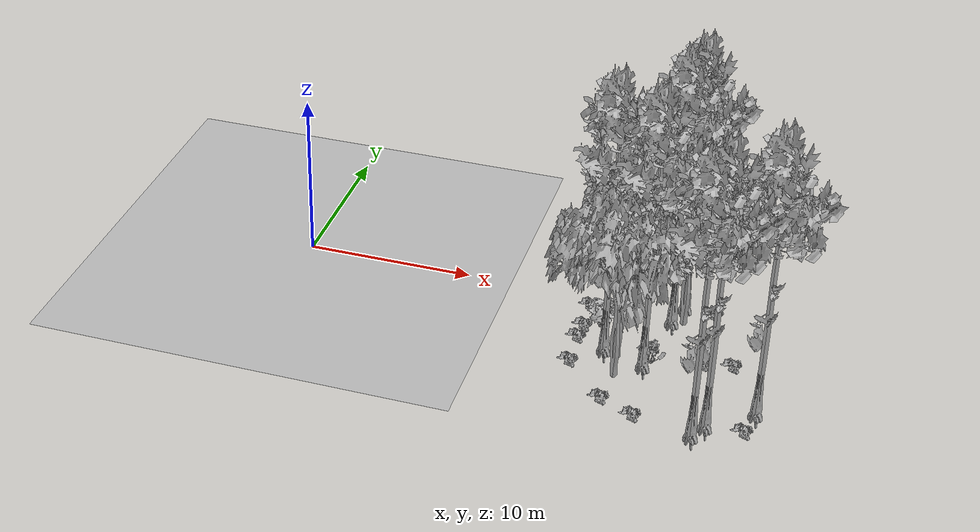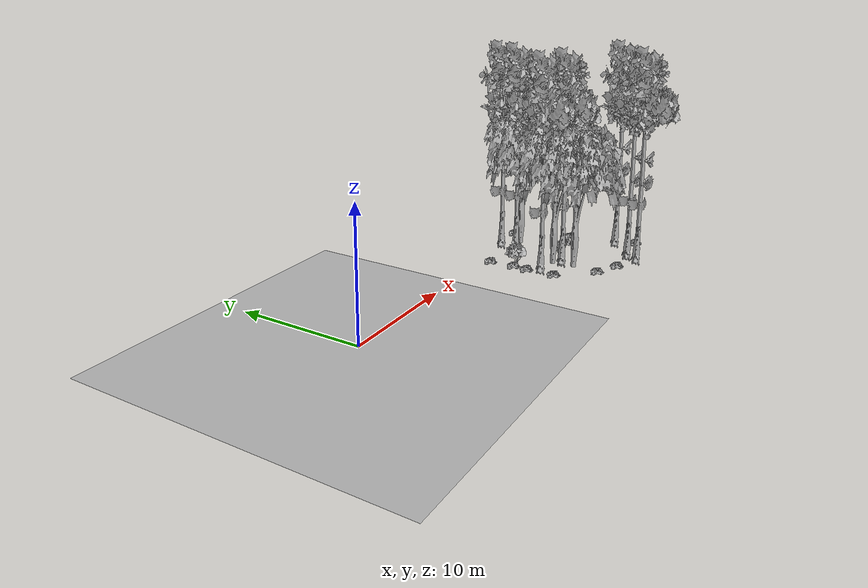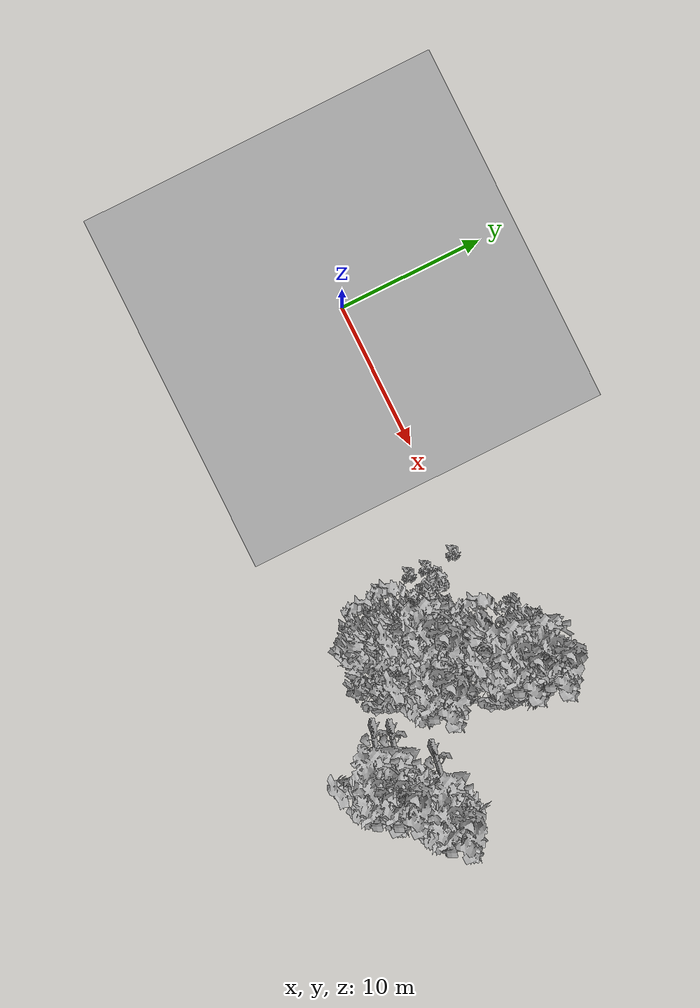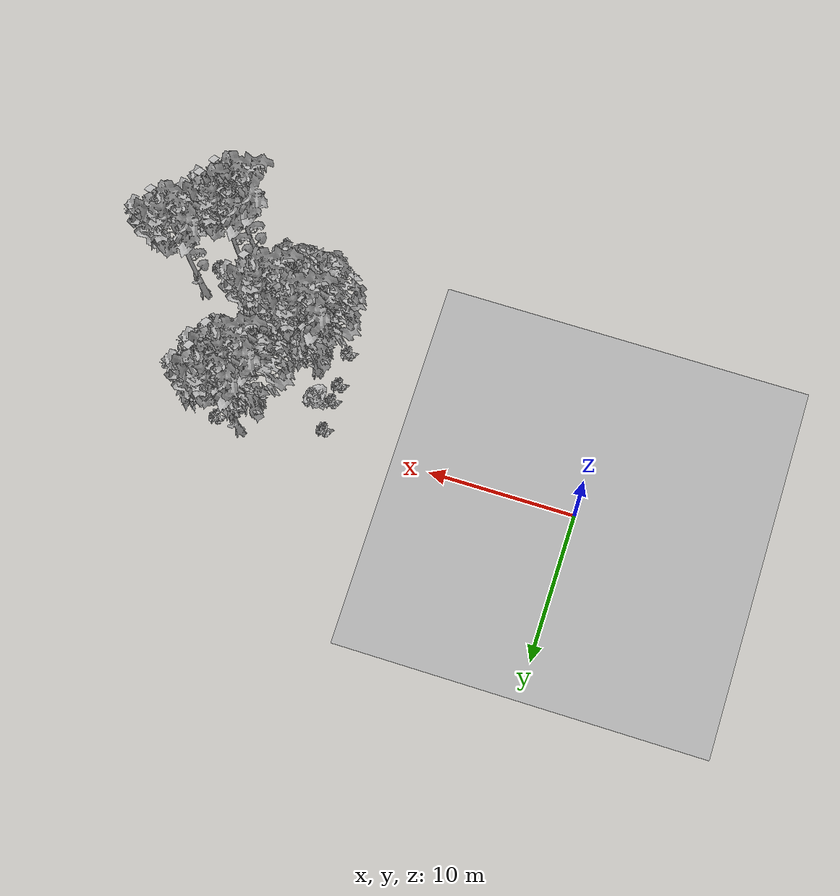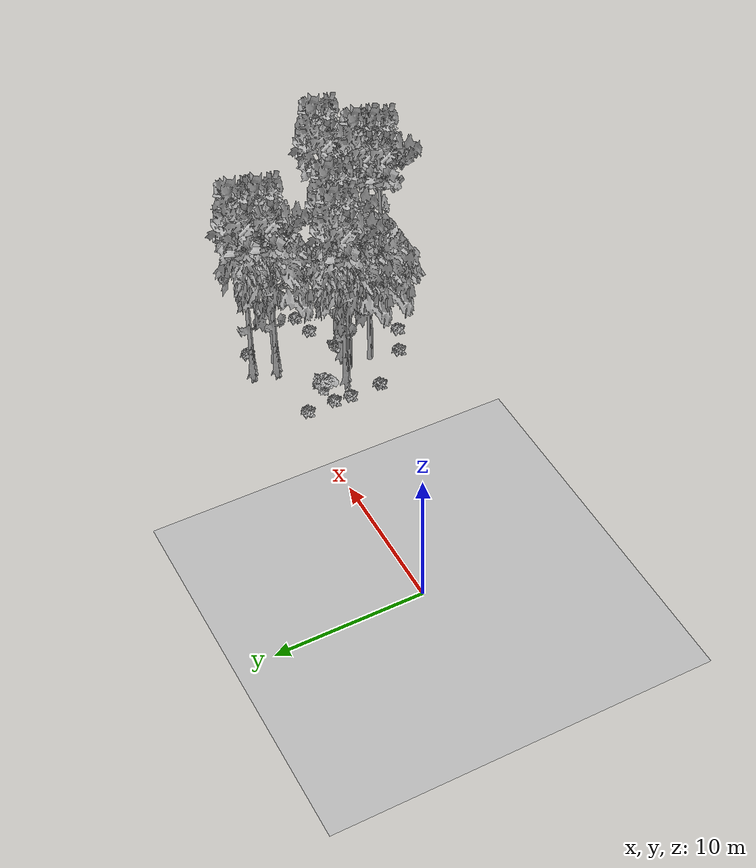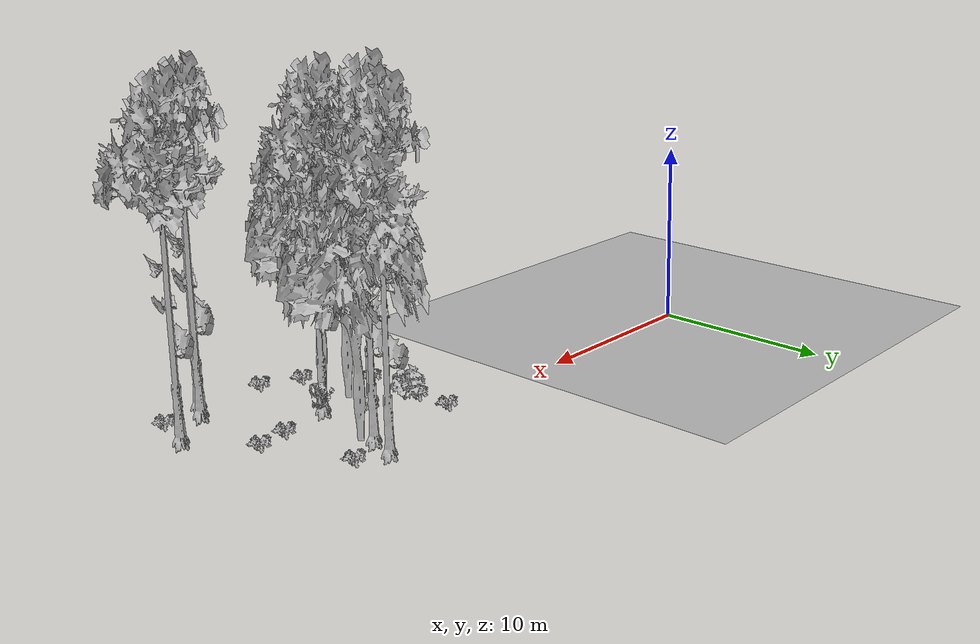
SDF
<sdf version="1.7">
 <world name="default">
  <model name="ground_plane">
   <static>1</static>
   <link name="link">
    <collision name="collision">
     <pose>-50 0 0 0 -0 0</pose>
     <geometry><plane><normal>0 0 1</normal><size>80 80</size></plane></geometry>
     <surface><contact><ode><min_depth>0.01</min_depth><max_vel>0</max_vel></ode></contact></surface>
    </collision>
    <visual name="grass">
     <cast_shadows>0</cast_shadows>
     <geometry>
      <mesh>
       <scale>0.46714285714285714 0.46714285714285714 0.1</scale>
       <uri>file://grass_plane/meshes/grass_plane.dae</uri>
      </mesh>
     </geometry>
    </visual>
   </link>
  </model>
  <model name="Tree 37">
   <static>1</static>
   <pose>25.901210232244182 -9.377925760192767 0 1.57079 -0 0</pose>
   <link name="link">
    <collision name="collision">
     <geometry><mesh><scale>3.5 5 3.5</scale><uri>model://tree_9/meshes/tree_9.obj</uri></mesh></geometry>
    </collision>
    <visual name="visual">
     <geometry><mesh><scale>3.5 5 3.5</scale><uri>model://tree_9/meshes/tree_9.obj</uri></mesh></geometry>
    </visual>
   </link>
  </model>
  <model name="Tree 75">
   <static>1</static>
   <pose>22.989416602415417 -0.7751276406888437 0 1.57079 -0 0</pose>
   <link name="link">
    <collision name="collision">
     <geometry><mesh><scale>3.5 5 3.5</scale><uri>model://tree_2/meshes/tree_2.obj</uri></mesh></geometry>
    </collision>
    <visual name="visual">
     <geometry><mesh><scale>3.5 5 3.5</scale><uri>model://tree_2/meshes/tree_2.obj</uri></mesh></geometry>
    </visual>
   </link>
  </model>
  <model name="Tree 116">
   <static>1</static>
   <pose>25.334481299563848 -10.377419522391513 0 1.57079 -0 0</pose>
   <link name="link">
    <collision name="collision">
     <geometry><mesh><scale>3.5 5 3.5</scale><uri>model://tree_9/meshes/tree_9.obj</uri></mesh></geometry>
    </collision>
    <visual name="visual">
     <geometry><mesh><scale>3.5 5 3.5</scale><uri>model://tree_9/meshes/tree_9.obj</uri></mesh></geometry>
    </visual>
   </link>
  </model>
  <model name="Tree 119">
   <static>1</static>
   <pose>20.238591992587423 -6.802817780426665 0 1.57079 -0 0</pose>
   <link name="link">
    <collision name="collision">
     <geometry><mesh><scale>3.5 5 3.5</scale><uri>model://tree_2/meshes/tree_2.obj</uri></mesh></geometry>
    </collision>
    <visual name="visual">
     <geometry><mesh><scale>3.5 5 3.5</scale><uri>model://tree_2/meshes/tree_2.obj</uri></mesh></geometry>
    </visual>
   </link>
  </model>
  <model name="Tree 251">
   <static>1</static>
   <pose>21.654480714058266 -5.212338930933107 0 1.57079 -0 0</pose>
   <link name="link">
    <collision name="collision">
     <geometry><mesh><scale>3.5 5 3.5</scale><uri>model://tree_9/meshes/tree_9.obj</uri></mesh></geometry>
    </collision>
    <visual name="visual">
     <geometry><mesh><scale>3.5 5 3.5</scale><uri>model://tree_9/meshes/tree_9.obj</uri></mesh></geometry>
    </visual>
   </link>
  </model>
  <model name="Tree 300">
   <static>1</static>
   <pose>19.239875803358764 -4.394657399350521 0 1.57079 -0 0</pose>
   <link name="link">
    <collision name="collision">
     <geometry><mesh><scale>3.5 5 3.5</scale><uri>model://tree_9/meshes/tree_9.obj</uri></mesh></geometry>
    </collision>
    <visual name="visual">
     <geometry><mesh><scale>3.5 5 3.5</scale><uri>model://tree_9/meshes/tree_9.obj</uri></mesh></geometry>
    </visual>
   </link>
  </model>
  <model name="Tree 385">
   <static>1</static>
   <pose>28.313302062492383 -7.495109575468959 0 1.57079 -0 0</pose>
   <link name="link">
    <collision name="collision">
     <geometry><mesh><scale>3.5 5 3.5</scale><uri>model://tree_9/meshes/tree_9.obj</uri></mesh></geometry>
    </collision>
    <visual name="visual">
     <geometry><mesh><scale>3.5 5 3.5</scale><uri>model://tree_9/meshes/tree_9.obj</uri></mesh></geometry>
    </visual>
   </link>
  </model>
  <model name="Tree 390">
   <static>1</static>
   <pose>22.39698997679826 -0.629621482124783 0 1.57079 -0 0</pose>
   <link name="link">
    <collision name="collision">
     <geometry><mesh><scale>3.5 5 3.5</scale><uri>model://tree_9/meshes/tree_9.obj</uri></mesh></geometry>
    </collision>
    <visual name="visual">
     <geometry><mesh><scale>3.5 5 3.5</scale><uri>model://tree_9/meshes/tree_9.obj</uri></mesh></geometry>
    </visual>
   </link>
  </model>
  <model name="Tree 414">
   <static>1</static>
   <pose>20.037782783827765 -5.08372729762786 0 1.57079 -0 0</pose>
   <link name="link">
    <collision name="collision">
     <geometry><mesh><scale>3.5 5 3.5</scale><uri>model://tree_2/meshes/tree_2.obj</uri></mesh></geometry>
    </collision>
    <visual name="visual">
     <geometry><mesh><scale>3.5 5 3.5</scale><uri>model://tree_2/meshes/tree_2.obj</uri></mesh></geometry>
    </visual>
   </link>
  </model>
  <model name="Tree 549">
   <static>1</static>
   <pose>22.865656358451467 0.9734392171967841 0 1.57079 -0 0</pose>
   <link name="link">
    <collision name="collision">
     <geometry><mesh><scale>3.5 5 3.5</scale><uri>model://tree_9/meshes/tree_9.obj</uri></mesh></geometry>
    </collision>
    <visual name="visual">
     <geometry><mesh><scale>3.5 5 3.5</scale><uri>model://tree_9/meshes/tree_9.obj</uri></mesh></geometry>
    </visual>
   </link>
  </model>
  <model name="Bush 14">
   <static>1</static>
   <pose>17.606480130921696 -2.7292538767327983 0 1.57079 -0 0</pose>
   <link name="link">
    <collision name="collision">
     <geometry><mesh><scale>2 2 2</scale><uri>model://bush_2/meshes/bush_2.obj</uri></mesh></geometry>
     <surface><contact><collide_without_contact>false</collide_without_contact></contact></surface>
    </collision>
    <visual name="visual">
     <geometry><mesh><scale>2 2 2</scale><uri>model://bush_2/meshes/bush_2.obj</uri></mesh></geometry>
    </visual>
   </link>
  </model>
  <model name="Bush 191">
   <static>1</static>
   <pose>17.519544099739313 -3.9187798999764922 0 1.57079 -0 0</pose>
   <link name="link">
    <collision name="collision">
     <geometry><mesh><scale>2 2 2</scale><uri>model://bush_2/meshes/bush_2.obj</uri></mesh></geometry>
     <surface><contact><collide_without_contact>false</collide_without_contact></contact></surface>
    </collision>
    <visual name="visual">
     <geometry><mesh><scale>2 2 2</scale><uri>model://bush_2/meshes/bush_2.obj</uri></mesh></geometry>
    </visual>
   </link>
  </model>
  <model name="Bush 235">
   <static>1</static>
   <pose>17.611693215000642 -6.215649362110476 0 1.57079 -0 0</pose>
   <link name="link">
    <collision name="collision">
     <geometry><mesh><scale>2 2 2</scale><uri>model://bush_2/meshes/bush_2.obj</uri></mesh></geometry>
     <surface><contact><collide_without_contact>false</collide_without_contact></contact></surface>
    </collision>
    <visual name="visual">
     <geometry><mesh><scale>2 2 2</scale><uri>model://bush_2/meshes/bush_2.obj</uri></mesh></geometry>
    </visual>
   </link>
  </model>
  <model name="Bush 340">
   <static>1</static>
   <pose>26.412479536132935 -3.983743361347429 0 1.57079 -0 0</pose>
   <link name="link">
    <collision name="collision">
     <geometry><mesh><scale>2 2 2</scale><uri>model://bush_2/meshes/bush_2.obj</uri></mesh></geometry>
     <surface><contact><collide_without_contact>false</collide_without_contact></contact></surface>
    </collision>
    <visual name="visual">
     <geometry><mesh><scale>2 2 2</scale><uri>model://bush_2/meshes/bush_2.obj</uri></mesh></geometry>
    </visual>
   </link>
  </model>
  <model name="Bush 353">
   <static>1</static>
   <pose>24.607930102009057 0.5439117355313172 0 1.57079 -0 0</pose>
   <link name="link">
    <collision name="collision">
     <geometry><mesh><scale>2 2 2</scale><uri>model://bush_2/meshes/bush_2.obj</uri></mesh></geometry>
     <surface><contact><collide_without_contact>false</collide_without_contact></contact></surface>
    </collision>
    <visual name="visual">
     <geometry><mesh><scale>2 2 2</scale><uri>model://bush_2/meshes/bush_2.obj</uri></mesh></geometry>
    </visual>
   </link>
  </model>
  <model name="Bush 365">
   <static>1</static>
   <pose>24.746012298031957 -4.2794431293424395 0 1.57079 -0 0</pose>
   <link name="link">
    <collision name="collision">
     <geometry><mesh><scale>2 2 2</scale><uri>model://bush_2/meshes/bush_2.obj</uri></mesh></geometry>
     <surface><contact><collide_without_contact>false</collide_without_contact></contact></surface>
    </collision>
    <visual name="visual">
     <geometry><mesh><scale>2 2 2</scale><uri>model://bush_2/meshes/bush_2.obj</uri></mesh></geometry>
    </visual>
   </link>
  </model>
  <model name="Bush 369">
   <static>1</static>
   <pose>27.899435304334773 -9.440817755556566 0 1.57079 -0 0</pose>
   <link name="link">
    <collision name="collision">
     <geometry><mesh><scale>2 2 2</scale><uri>model://bush_2/meshes/bush_2.obj</uri></mesh></geometry>
     <surface><contact><collide_without_contact>false</collide_without_contact></contact></surface>
    </collision>
    <visual name="visual">
     <geometry><mesh><scale>2 2 2</scale><uri>model://bush_2/meshes/bush_2.obj</uri></mesh></geometry>
    </visual>
   </link>
  </model>
  <model name="Bush 378">
   <static>1</static>
   <pose>18.589875122373165 -2.5880794025162714 0 1.57079 -0 0</pose>
   <link name="link">
    <collision name="collision">
     <geometry><mesh><scale>2 2 2</scale><uri>model://bush_1/meshes/bush_1.obj</uri></mesh></geometry>
     <surface><contact><collide_without_contact>false</collide_without_contact></contact></surface>
    </collision>
    <visual name="visual">
     <geometry><mesh><scale>2 2 2</scale><uri>model://bush_1/meshes/bush_1.obj</uri></mesh></geometry>
    </visual>
   </link>
  </model>
  <model name="Bush 492">
   <static>1</static>
   <pose>21.996555045498184 -4.99816034459851 0 1.57079 -0 0</pose>
   <link name="link">
    <collision name="collision">
     <geometry><mesh><scale>2 2 2</scale><uri>model://bush_4/meshes/bush_4.obj</uri></mesh></geometry>
     <surface><contact><collide_without_contact>false</collide_without_contact></contact></surface>
    </collision>
    <visual name="visual">
     <geometry><mesh><scale>2 2 2</scale><uri>model://bush_4/meshes/bush_4.obj</uri></mesh></geometry>
    </visual>
   </link>
  </model>
  <model name="Bush 517">
   <static>1</static>
   <pose>21.969476484616948 -9.87915769577695 0 1.57079 -0 0</pose>
   <link name="link">
    <collision name="collision">
     <geometry><mesh><scale>2 2 2</scale><uri>model://bush_2/meshes/bush_2.obj</uri></mesh></geometry>
     <surface><contact><collide_without_contact>false</collide_without_contact></contact></surface>
    </collision>
    <visual name="visual">
     <geometry><mesh><scale>2 2 2</scale><uri>model://bush_2/meshes/bush_2.obj</uri></mesh></geometry>
    </visual>
   </link>
  </model>
  <model name="Bush 532">
   <static>1</static>
   <pose>20.004208089842727 -8.938421142965165 0 1.57079 -0 0</pose>
   <link name="link">
    <collision name="collision">
     <geometry><mesh><scale>2 2 2</scale><uri>model://bush_2/meshes/bush_2.obj</uri></mesh></geometry>
     <surface><contact><collide_without_contact>false</collide_without_contact></contact></surface>
    </collision>
    <visual name="visual">
     <geometry><mesh><scale>2 2 2</scale><uri>model://bush_2/meshes/bush_2.obj</uri></mesh></geometry>
    </visual>
   </link>
  </model>
  <model name="Bush 626">
   <static>1</static>
   <pose>17.50840490347371 -0.7053132551926495 0 1.57079 -0 0</pose>
   <link name="link">
    <collision name="collision">
     <geometry><mesh><scale>2 2 2</scale><uri>model://bush_2/meshes/bush_2.obj</uri></mesh></geometry>
     <surface><contact><collide_without_contact>false</collide_without_contact></contact></surface>
    </collision>
    <visual name="visual">
     <geometry><mesh><scale>2 2 2</scale><uri>model://bush_2/meshes/bush_2.obj</uri></mesh></geometry>
    </visual>
   </link>
  </model>
 </world>
</sdf>
